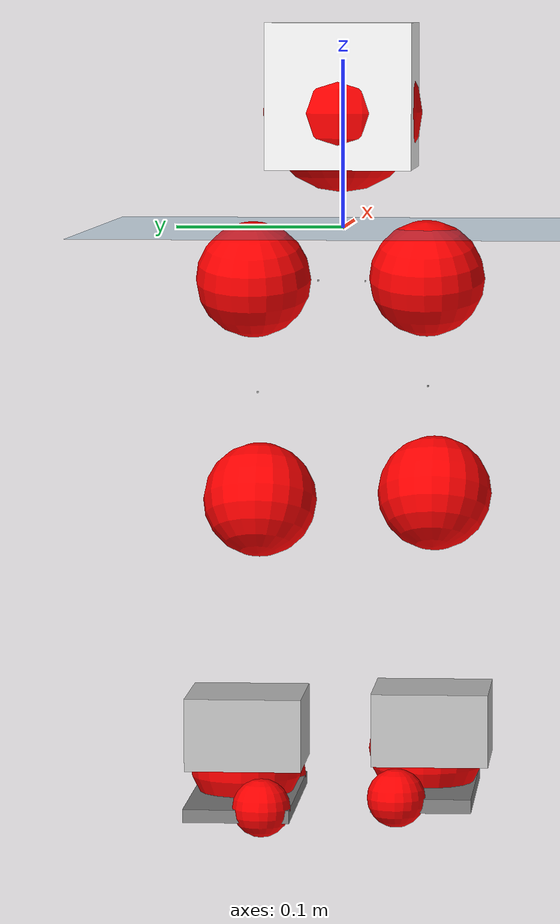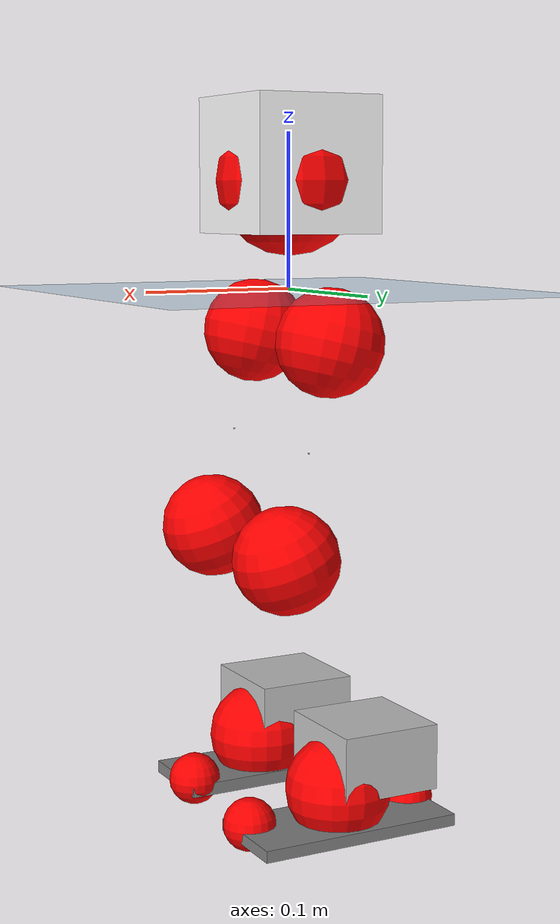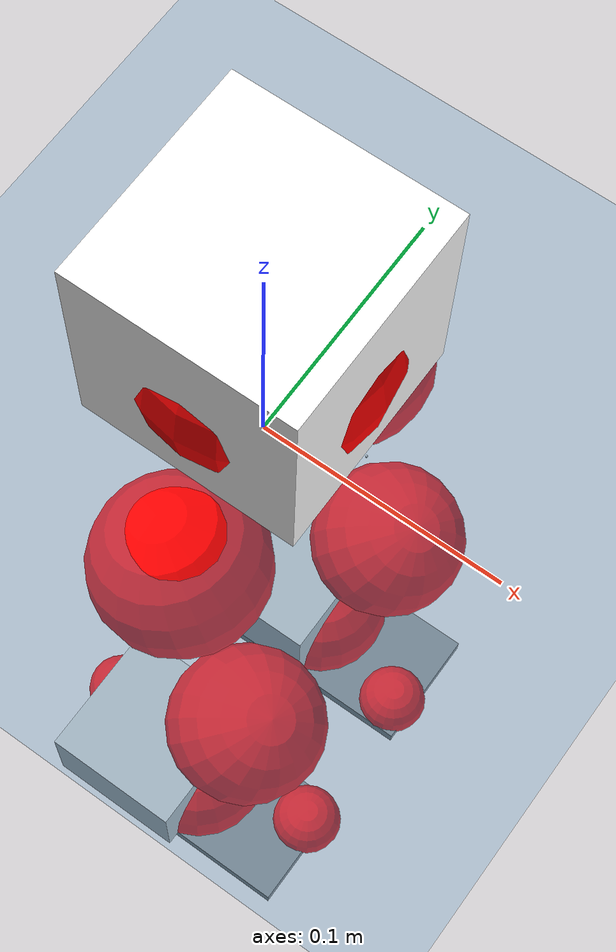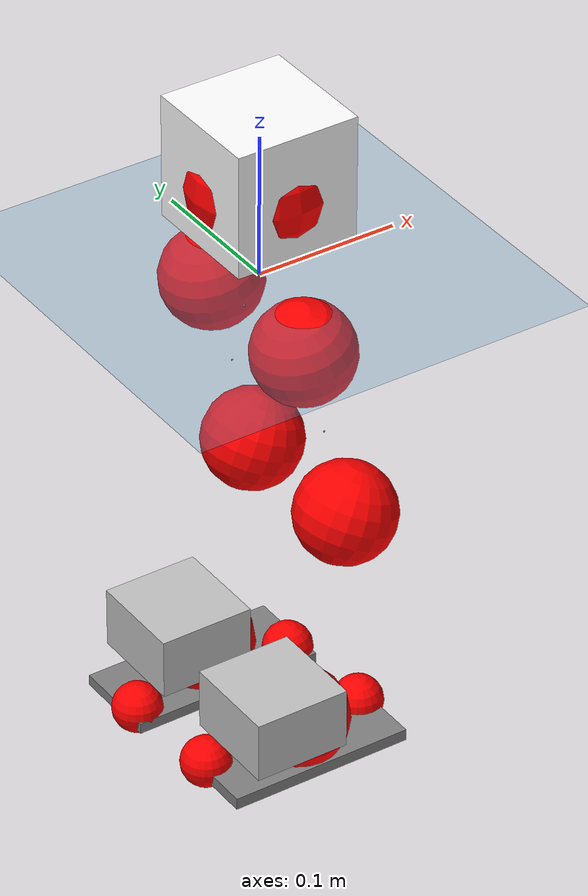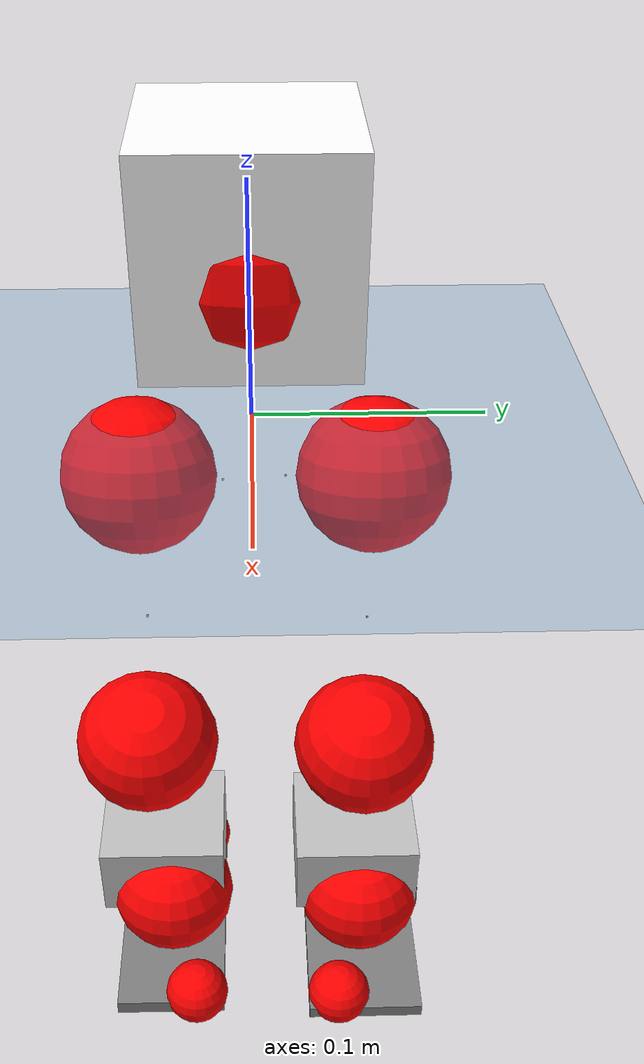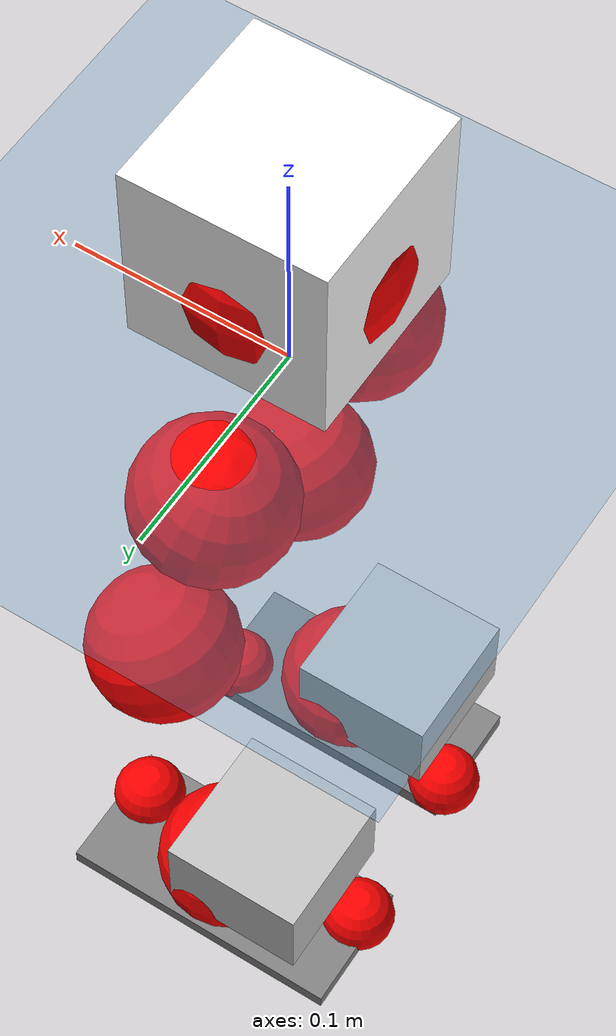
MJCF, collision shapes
<mujoco model="pi_12dof_release_v1">
  <compiler angle="radian" assetdir="assets" balanceinertia="true" inertiafromgeom="false"/>

  <option timestep="0.005" density="1.2" viscosity="2e-05"/>

  <size nkey="1"/>

  <visual>
    <quality shadowsize="8192"/>
    <map shadowclip="0.5"/>
  </visual>

  <default>
    <default class="/">
      <joint armature="0.01" damping="0.01" frictionloss="0.01"/>
      <geom contype="0" conaffinity="0" group="1" solref="-1000 -80"/>
      <site size="0.01 0.005 0.005" group="5"/>
      <general forcelimited="true" biastype="affine" gainprm="20" biasprm="0 -20 -0.5"/>
      <default class="foot">
        <geom size="0.0845 0.036 0.005" type="box" condim="6" group="4" priority="1" friction="0.9 0.2 0.2" solimp="0.015 1 0.005"/>
      </default>
      <default class="reward_collision_sphere">
        <geom group="5" rgba="1 0 0 1"/>
      </default>
    </default>
  </default>

  <asset>
    <texture type="skybox" colorspace="auto" name="//unnamed_texture_0" builtin="gradient" rgb1="0.95 0.95 0.95" rgb2="0.95 0.95 0.95" width="100" height="600"/>
    <texture type="2d" colorspace="auto" name="texplane" builtin="checker" rgb1="0.345 0.575 0.748" rgb2="0.345 0.575 0.748" markrgb="1 1 1" width="512" height="512"/>
    <material name="MatPlane" class="/" texture="texplane" texuniform="true" texrepeat="2 2" specular="0.9"/>
    <mesh name="baselink_1" class="/" file="baselink_1.STL"/>
    <mesh name="r_hip_pitch_link" class="/" file="r_hip_pitch_link.STL"/>
    <mesh name="r_hip_roll_link" class="/" file="r_hip_roll_link.STL"/>
    <mesh name="r_thigh_link" class="/" file="r_thigh_link.STL"/>
    <mesh name="r_calf_link" class="/" file="r_calf_link.STL"/>
    <mesh name="r_ankle_pitch_link" class="/" file="r_ankle_pitch_link.STL"/>
    <mesh name="r_ankle_roll_link" class="/" file="r_ankle_roll_link.STL"/>
    <mesh name="l_hip_pitch_link" class="/" file="l_hip_pitch_link.STL"/>
    <mesh name="l_hip_roll_link" class="/" file="l_hip_roll_link.STL"/>
    <mesh name="l_thigh_link" class="/" file="l_thigh_link.STL"/>
    <mesh name="l_calf_link" class="/" file="l_calf_link.STL"/>
    <mesh name="l_ankle_pitch_link" class="/" file="l_ankle_pitch_link.STL"/>
    <mesh name="l_ankle_roll_link" class="/" file="l_ankle_roll_link.STL"/>
  </asset>

  <worldbody>
    <geom name="floor" class="/" size="100 100 0.125" type="plane" group="0" material="MatPlane"/>
    <light name="toplight_shadow" class="/" pos="0 0 5" dir="0.0990148 0.0990148 -0.990148" type="directional" ambient="0.04 0.04 0.04" diffuse="0.55 0.55 0.55" specular="0.12 0.12 0.12"/>
    <light name="toplight_fill" class="/" pos="0 0 5" dir="0.0990148 0.0990148 -0.990148" type="directional" castshadow="false" ambient="0.04 0.04 0.04" diffuse="0.3 0.3 0.3" specular="0.08 0.08 0.08"/>
    <body name="trunk" pos="-0.000408182 0.000360783 -0.0004429" quat="1 0.00032326 0.000149749 0.000400957">
      <inertial pos="0.0019132 0.00133253 0.0391468" quat="0.694217 0.00753887 0.0153384 0.719563" mass="1.35698" diaginertia="0.00510719 0.00181082 0.00396831"/>
      <joint name="//unnamed_joint_0" type="free"/>
      <geom name="//unnamed_geom_1" class="/" type="mesh" density="0" rgba="1 1 1 1" mesh="baselink_1"/>
      <geom name="//unnamed_geom_2" class="/" size="0.0432772 0.0432772 0.0432772" pos="0 0 0.0794404" type="box" rgba="1 1 1 1"/>
      <geom name="//unnamed_geom_3" class="reward_collision_sphere" size="0.047605" pos="0 0 0.0695104"/>
      <site name="imu" class="/" pos="0.00256158 0.0141097 -0.0112964" size="0.00865545"/>
      <camera name="track" class="/" pos="0 -1.45337 0" quat="0.707107 0.707107 0 0" mode="trackcom"/>
      <camera name="ego_camera" class="/" pos="0.0657709 0 0.178741" quat="-0.5 -0.5 0.5 0.5"/>
      <body name="r_hip_pitch_link" pos="0.000790297 -0.0136419 -0.0313221" quat="0.992198 3.31506e-06 -0.124672 -3.94113e-06">
        <inertial pos="-0.000628913 -0.0395156 -0.000833001" quat="-0.0212386 0.707178 -0.0271242 0.706196" mass="0.231772" diaginertia="5.59829e-05 1.87712e-05 7.73215e-05"/>
        <joint name="r_hip_pitch_joint" class="/" pos="0 0 0" axis="0.00418984 -0.999989 -0.00229668" range="-1.72975 1.21953" armature="0.00881285" damping="0.00269634" frictionloss="0.00870151"/>
        <geom name="//unnamed_geom_4" class="/" type="mesh" density="0" rgba="0.75294 0.75294 0.75294 1" mesh="r_hip_pitch_link"/>
        <geom name="//unnamed_geom_5" class="/" size="0.000432772 0.000432772 0.000432772" type="box" rgba="0.75294 0.75294 0.75294 1"/>
        <body name="r_hip_roll_link" pos="-0.000534777 -0.0370803 0.0021412" quat="1 -8.20652e-05 0.00027945 -0.000361947">
          <inertial pos="-0.0033713 -0.000332855 -0.0622374" quat="0.706124 -0.0701125 -0.0858175 0.699363" mass="0.249838" diaginertia="0.000171173 5.50909e-05 0.000118208"/>
          <joint name="r_hip_roll_joint" class="/" pos="0 0 0" axis="-0.999921 -0.00331564 0.0121456" range="-0.111022 0.485435" armature="0.00856857" damping="0.00552852" frictionloss="0.00986963"/>
          <geom name="//unnamed_geom_6" class="/" type="mesh" density="0" rgba="0.75294 0.75294 0.75294 1" mesh="r_hip_roll_link"/>
          <geom name="//unnamed_geom_7" class="/" size="0.000432772 0.000432772 0.000432772" type="box" rgba="0.75294 0.75294 0.75294 1"/>
          <geom name="//unnamed_geom_8" class="reward_collision_sphere" size="0.0346218"/>
          <body name="r_thigh_link" pos="-0.000676491 0.000256225 -0.0679047" quat="1 -0.000481182 -0.000159384 5.04222e-05">
            <inertial pos="0.000665358 -3.17127e-05 -0.0462462" quat="0.739665 0.672966 0.00226558 0.00275273" mass="0.0739953" diaginertia="6.4543e-05 1.92158e-05 5.63442e-05"/>
            <joint name="r_thigh_joint" class="/" pos="0 0 0" axis="-0.000285233 -0.00208618 -0.999998" stiffness="0.0092207" range="-0.358271 0.62905" armature="0.00862089" damping="0.0172703" frictionloss="0.00856842"/>
            <geom name="//unnamed_geom_9" class="/" type="mesh" density="0" rgba="0.75294 0.75294 0.75294 1" mesh="r_thigh_link"/>
            <geom name="//unnamed_geom_10" class="/" size="0.000432772 0.000432772 0.000432772" type="box" rgba="0.75294 0.75294 0.75294 1"/>
            <body name="r_calf_link" pos="-0.00222893 -0.00345504 -0.0676195" quat="0.947649 1.03372e-05 0.319313 8.6163e-05">
              <inertial pos="-0.00323411 -0.000705084 -0.0685006" quat="0.999989 -0.00318759 -0.000303248 0.00329996" mass="0.517295" diaginertia="0.00179068 0.000697736 0.000164171"/>
              <joint name="r_calf_joint" class="/" pos="0 0 0" axis="0.00221392 -0.999951 0.00966803" range="-1.65447 0.703952" armature="0.00871128" damping="0.00268904" frictionloss="0.00828343"/>
              <geom name="//unnamed_geom_11" class="/" type="mesh" density="0" rgba="0.75294 0.75294 0.75294 1" mesh="r_calf_link"/>
              <geom name="//unnamed_geom_12" class="/" size="0.000432772 0.000432772 0.000432772" type="box" rgba="0.75294 0.75294 0.75294 1"/>
              <geom name="//unnamed_geom_13" class="reward_collision_sphere" size="0.0346218"/>
              <body name="r_ankle_pitch_link" pos="-6.96975e-05 -0.00164236 -0.143325" quat="0.980081 -0.00104143 -0.198591 -0.000911753">
                <inertial pos="0.00140876 0.00294409 -0.00247914" quat="0.0042186 0.711146 -0.0073462 0.702993" mass="0.1174" diaginertia="0.000157708 4.37709e-05 0.000119484"/>
                <joint name="r_ankle_pitch_joint" class="/" pos="0 0 0" axis="-0.0126013 -0.999913 0.00378481" range="-1.35503 0.501393" armature="0.00764462" damping="0.00701679" frictionloss="0.00867375"/>
                <geom name="//unnamed_geom_14" class="/" type="mesh" density="0" rgba="0.75294 0.75294 0.75294 1" mesh="r_ankle_pitch_link"/>
                <geom name="//unnamed_geom_15" class="/" size="0.0337562 0.0346218 0.0216386" type="box" rgba="0.75294 0.75294 0.75294 1"/>
                <body name="r_ankle_roll_link" pos="0.0663772 0.00460426 0.000775642" quat="1 0.000303319 0.000239067 -3.27869e-05">
                  <inertial pos="-0.0230732 -0.00114216 -0.0124033" quat="0.559921 0.430527 0.434211 0.559103" mass="0.331041" diaginertia="0.000585503 0.000210009 0.00026009"/>
                  <joint name="r_ankle_roll_joint" class="/" pos="0 0 0" axis="-0.999984 -0.00227463 0.00513666" stiffness="0.00786925" range="-0.14761 0.208455" armature="0.00794602" damping="0" frictionloss="0.00822236"/>
                  <geom name="//unnamed_geom_16" class="/" type="mesh" density="0" rgba="0.75294 0.75294 0.75294 1" mesh="r_ankle_roll_link"/>
                  <geom name="//unnamed_geom_17" class="/" type="mesh" rgba="0.75294 0.75294 0.75294 1" mesh="r_ankle_roll_link"/>
                  <geom name="right_foot" class="foot" size="0.0656611 0.029649 0.00419992" pos="-0.0447242 0 -0.0436922"/>
                  <geom name="//unnamed_geom_19" class="reward_collision_sphere" size="0.0346218" pos="-0.0438473 0 -0.0198601"/>
                  <geom name="//unnamed_geom_20" class="reward_collision_sphere" size="0.0173109" pos="0.0131542 0.0145337 -0.0397202"/>
                  <geom name="//unnamed_geom_21" class="reward_collision_sphere" size="0.0173109" pos="-0.105233 0.0145337 -0.0397202"/>
                  <site name="right_foot" class="foot" pos="-0.0447242 0 -0.0436922" size="0.00865545"/>
                </body>
              </body>
            </body>
          </body>
        </body>
      </body>
      <body name="l_hip_pitch_link" pos="-0.00119372 0.0143698 -0.0309336" quat="0.992209 -0.000787648 -0.124581 -0.000225372">
        <inertial pos="-0.00187283 0.0379331 -0.000185908" quat="-0.0479964 0.709114 0.0239034 0.703052" mass="0.245706" diaginertia="6.20023e-05 2.1181e-05 9.10973e-05"/>
        <joint name="l_hip_pitch_joint" class="/" pos="0 0 0" axis="-0.00842345 0.999955 -0.00432509" range="-1.25766 1.69711" armature="0.00874451" damping="0" frictionloss="0.0098752"/>
        <geom name="//unnamed_geom_22" class="/" type="mesh" density="0" rgba="0.75294 0.75294 0.75294 1" mesh="l_hip_pitch_link"/>
        <geom name="//unnamed_geom_23" class="/" size="0.000432772 0.000432772 0.000432772" type="box" rgba="0.75294 0.75294 0.75294 1"/>
        <body name="l_hip_roll_link" pos="0.00105447 0.0389982 0.000199934" quat="0.999999 0.000903121 -0.000715106 -4.73185e-05">
          <inertial pos="-0.00153114 -0.00248822 -0.0605991" quat="0.6992 -0.0758264 -0.0784477 0.706552" mass="0.25383" diaginertia="0.000174205 5.58581e-05 0.000127519"/>
          <joint name="l_hip_roll_joint" class="/" pos="0 0 0" axis="-0.999992 0.00207798 0.00334579" range="-0.501859 0.0569842" armature="0.00768312" damping="0.0177739" frictionloss="0.00871797"/>
          <geom name="//unnamed_geom_24" class="/" type="mesh" density="0" rgba="0.75294 0.75294 0.75294 1" mesh="l_hip_roll_link"/>
          <geom name="//unnamed_geom_25" class="/" size="0.000432772 0.000432772 0.000432772" type="box" rgba="0.75294 0.75294 0.75294 1"/>
          <geom name="//unnamed_geom_26" class="reward_collision_sphere" size="0.0346218"/>
          <body name="l_thigh_link" pos="-0.00305429 -0.00117806 -0.0701875" quat="0.999999 -0.000843295 -0.000404527 0.000566431">
            <inertial pos="-0.000238907 0.00121523 -0.0475881" quat="0.675996 0.736876 0.00656322 -0.00080561" mass="0.0698486" diaginertia="6.29649e-05 1.79189e-05 5.58827e-05"/>
            <joint name="l_thigh_joint" class="/" pos="0 0 0" axis="-0.00292651 -0.000211286 -0.999996" range="-0.579872 0.301289" armature="0.00811101" damping="0" frictionloss="0.00873486"/>
            <geom name="//unnamed_geom_27" class="/" type="mesh" density="0" rgba="0.75294 0.75294 0.75294 1" mesh="l_thigh_link"/>
            <geom name="//unnamed_geom_28" class="/" size="0.000432772 0.000432772 0.000432772" type="box" rgba="0.75294 0.75294 0.75294 1"/>
            <body name="l_calf_link" pos="-0.0014787 0.000115763 -0.0688713" quat="0.947656 5.00054e-05 0.319294 -9.74313e-05">
              <inertial pos="-0.00207906 -0.000842176 -0.0675506" quat="0.999993 -0.00267849 -0.000396953 0.00275164" mass="0.533173" diaginertia="0.00185667 0.000707446 0.000175412"/>
              <joint name="l_calf_joint" class="/" pos="0 0 0" axis="0.0115166 0.999874 0.0109546" range="-0.683452 1.67567" armature="0.00917287" damping="0" frictionloss="0.00984324"/>
              <geom name="//unnamed_geom_29" class="/" type="mesh" density="0" rgba="0.75294 0.75294 0.75294 1" mesh="l_calf_link"/>
              <geom name="//unnamed_geom_30" class="/" size="0.000432772 0.000432772 0.000432772" type="box" rgba="0.75294 0.75294 0.75294 1"/>
              <geom name="//unnamed_geom_31" class="reward_collision_sphere" size="0.0346218"/>
              <body name="l_ankle_pitch_link" pos="-0.00108146 0.00298436 -0.142555" quat="0.980072 4.729e-05 -0.198642 1.63207e-05">
                <inertial pos="0.00719286 -0.00379285 -0.00138984" quat="-0.0123136 0.700699 0.00344578 0.713343" mass="0.111346" diaginertia="0.000159253 4.39182e-05 0.000114488"/>
                <joint name="l_ankle_pitch_joint" class="/" pos="0 0 0" axis="0.00360622 0.999993 -0.000543485" stiffness="0.00788321" range="-0.5623 1.27847" armature="0.00740022" damping="0.010162" frictionloss="0.00769986"/>
                <geom name="//unnamed_geom_32" class="/" type="mesh" density="0" rgba="0.75294 0.75294 0.75294 1" mesh="l_ankle_pitch_link"/>
                <geom name="//unnamed_geom_33" class="/" size="0.0337562 0.0346218 0.0216386" type="box" rgba="0.75294 0.75294 0.75294 1"/>
                <body name="l_ankle_roll_link" pos="0.0650936 0.00261969 -0.00184643" quat="1 0.000132115 -4.67205e-05 0.000109444">
                  <inertial pos="-0.0203271 -0.000773597 -0.0134295" quat="0.563028 0.425503 0.433632 0.560276" mass="0.345693" diaginertia="0.000606701 0.000223927 0.000279424"/>
                  <joint name="l_ankle_roll_joint" class="/" pos="0 0 0" axis="-1 -0.00049979 0.000315387" range="-0.152919 0.157526" armature="0.00841075" damping="0" frictionloss="0.0074575"/>
                  <geom name="//unnamed_geom_34" class="/" type="mesh" density="0" rgba="0.75294 0.75294 0.75294 1" mesh="l_ankle_roll_link"/>
                  <geom name="//unnamed_geom_35" class="/" type="mesh" rgba="0.75294 0.75294 0.75294 1" mesh="l_ankle_roll_link"/>
                  <geom name="left_foot" class="foot" size="0.0690879 0.0314754 0.00387572" pos="-0.0447242 0 -0.0436922"/>
                  <geom name="//unnamed_geom_37" class="reward_collision_sphere" size="0.0346218" pos="-0.0438473 0 -0.0198601"/>
                  <geom name="//unnamed_geom_38" class="reward_collision_sphere" size="0.0173109" pos="0.0131542 -0.0145337 -0.0397202"/>
                  <geom name="//unnamed_geom_39" class="reward_collision_sphere" size="0.0173109" pos="-0.105233 -0.0145337 -0.0397202"/>
                  <site name="left_foot" class="foot" pos="-0.0447242 0 -0.0436922" size="0.00865545"/>
                </body>
              </body>
            </body>
          </body>
        </body>
      </body>
    </body>
  </worldbody>

  <contact>
    <pair class="/" geom1="floor" geom2="right_foot" name="//unnamed_contact_1"/>
    <pair class="/" geom1="floor" geom2="left_foot" name="//unnamed_contact_0"/>
  </contact>

  <actuator>
    <general name="r_hip_pitch_joint" class="/" joint="r_hip_pitch_joint" forcerange="-19.3701 19.3701" gainprm="17.4677" biasprm="0 -17.4677 -0.419961"/>
    <general name="r_hip_roll_joint" class="/" joint="r_hip_roll_joint" forcerange="-18.1712 18.1712" gainprm="17.4677" biasprm="0 -17.4677 -0.419961"/>
    <general name="r_thigh_joint" class="/" joint="r_thigh_joint" forcerange="-17.9571 17.9571" gainprm="17.4677" biasprm="0 -17.4677 -0.419961"/>
    <general name="r_calf_joint" class="/" joint="r_calf_joint" forcerange="-17.9676 17.9676" gainprm="17.4677" biasprm="0 -17.4677 -0.419961"/>
    <general name="r_ankle_pitch_joint" class="/" joint="r_ankle_pitch_joint" forcerange="-16.3393 16.3393" gainprm="17.4677" biasprm="0 -17.4677 -0.419961"/>
    <general name="r_ankle_roll_joint" class="/" joint="r_ankle_roll_joint" forcerange="-18.0854 18.0854" gainprm="17.4677" biasprm="0 -17.4677 -0.419961"/>
    <general name="l_hip_pitch_joint" class="/" joint="l_hip_pitch_joint" forcerange="-18.1625 18.1625" gainprm="17.4677" biasprm="0 -17.4677 -0.419961"/>
    <general name="l_hip_roll_joint" class="/" joint="l_hip_roll_joint" forcerange="-18.4523 18.4523" gainprm="17.4677" biasprm="0 -17.4677 -0.419961"/>
    <general name="l_thigh_joint" class="/" joint="l_thigh_joint" forcerange="-20.0941 20.0941" gainprm="17.4677" biasprm="0 -17.4677 -0.419961"/>
    <general name="l_calf_joint" class="/" joint="l_calf_joint" forcerange="-18.1081 18.1081" gainprm="17.4677" biasprm="0 -17.4677 -0.419961"/>
    <general name="l_ankle_pitch_joint" class="/" joint="l_ankle_pitch_joint" forcerange="-20.0625 20.0625" gainprm="17.4677" biasprm="0 -17.4677 -0.419961"/>
    <general name="l_ankle_roll_joint" class="/" joint="l_ankle_roll_joint" forcerange="-18.2126 18.2126" gainprm="17.4677" biasprm="0 -17.4677 -0.419961"/>
  </actuator>

  <sensor>
    <gyro site="imu" name="imu_angular_velocity"/>
    <velocimeter site="imu" name="imu_linear_velocity"/>
    <framelinvel objtype="site" objname="left_foot" name="left_foot_global_linear_velocity"/>
    <framelinvel objtype="site" objname="right_foot" name="right_foot_global_linear_velocity"/>
  </sensor>

  <keyframe>
    <key name="home" qpos="0 0 0.291 1 0 0 0 0.4 0 0 -0.8 0.4 0 -0.4 0 0 0.8 -0.4 0"/>
  </keyframe>
</mujoco>
